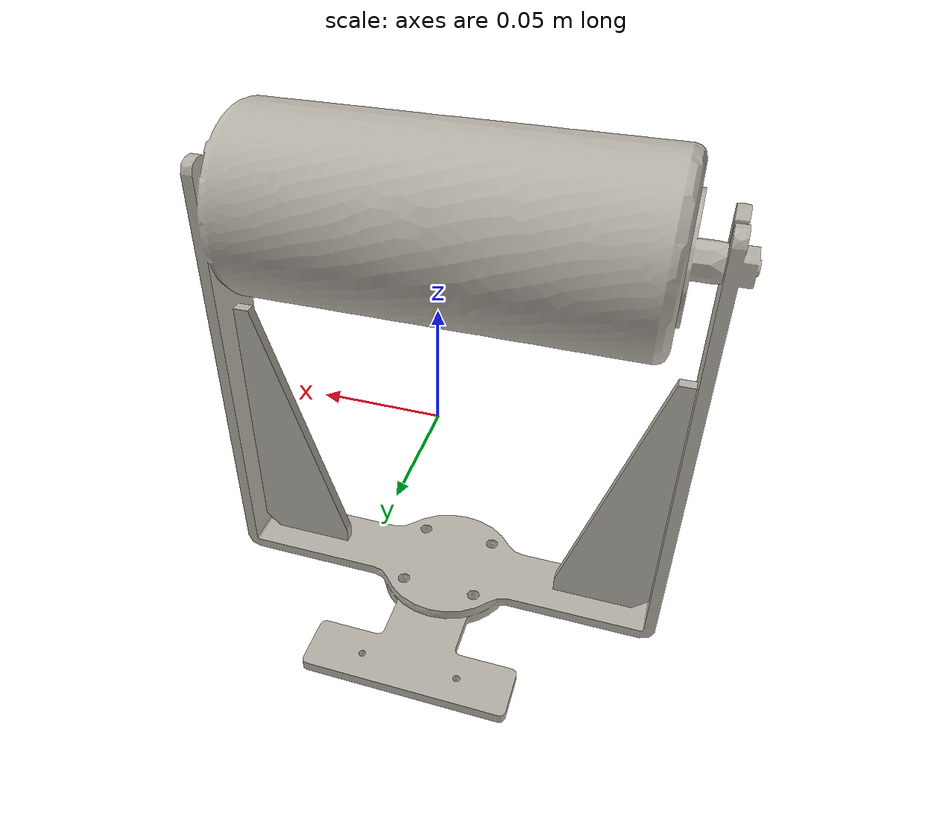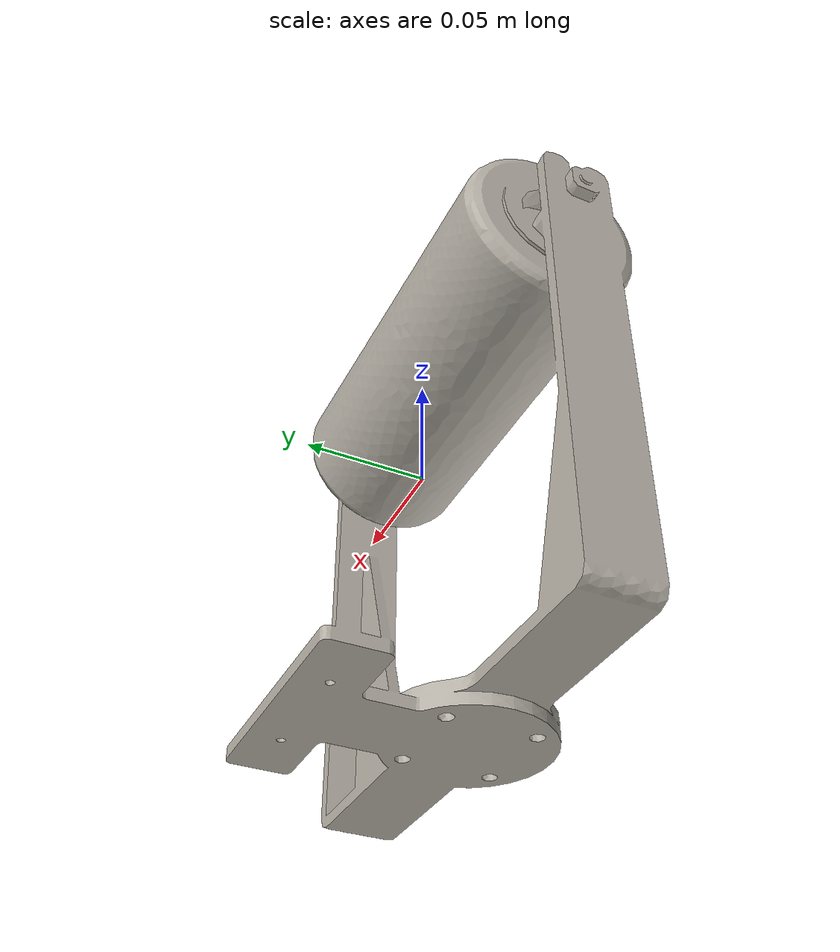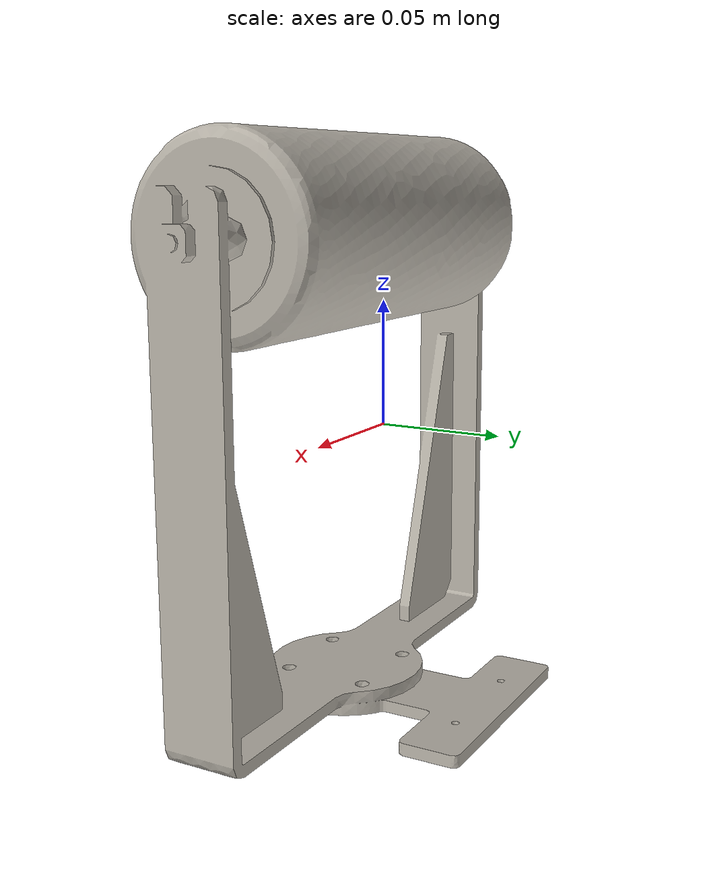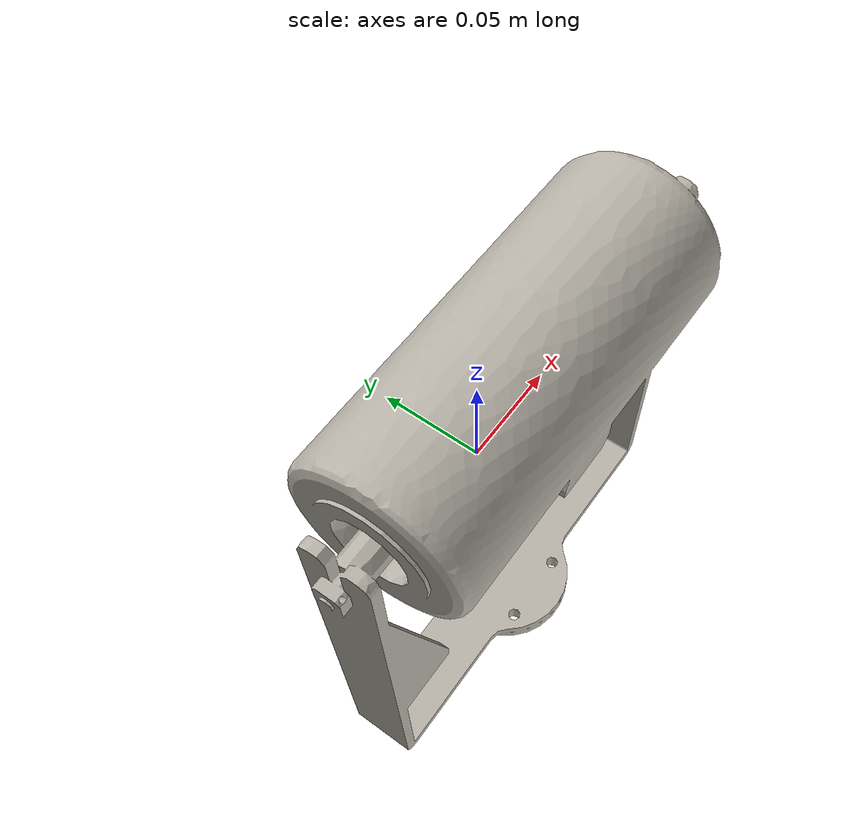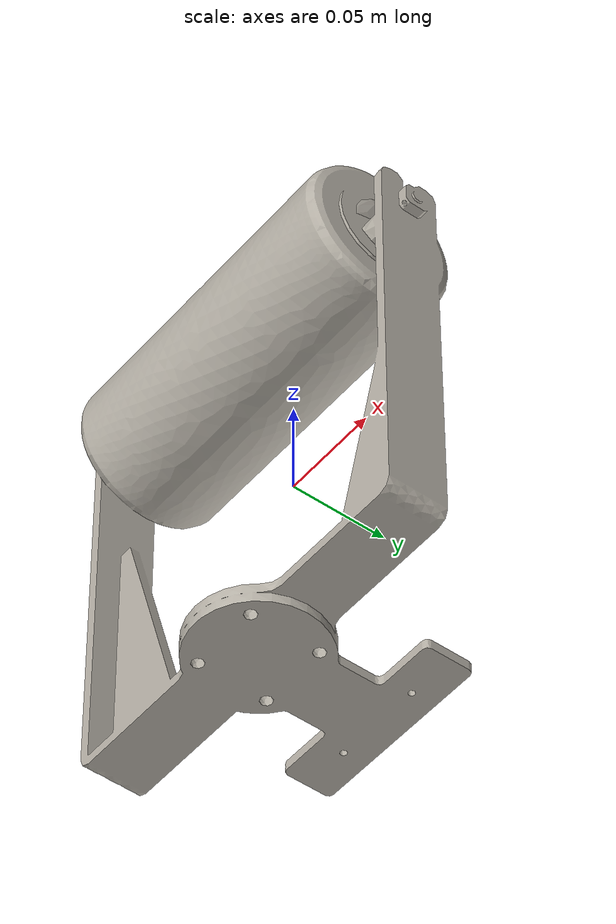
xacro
<?xml version="1.0"?>
<robot xmlns:xacro="http://www.ros.org/wiki/xacro" name="rr_00a_b_eoat_no_camera_standalone">
  <xacro:arg name="mass" default="1.0"/>
  <xacro:arg name="xyz" default="0 0 0"/>
  <xacro:arg name="rpy" default="0 0 0"/>

  <link name="base_link"/>

  <xacro:include filename="rr_00a_b_eoat_no_camera.urdf.xacro"/>
  <xacro:rr_00a_b_eoat_no_camera
    parent="base_link"
    prefix="eoat_no_camera_"
    xyz="$(arg xyz)"
    rpy="$(arg rpy)"
    mass="$(arg mass)"/>
</robot>

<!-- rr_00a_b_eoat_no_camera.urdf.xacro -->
<robot xmlns:xacro="http://www.ros.org/wiki/xacro">
  <xacro:property name="rr_00a_b_eoat_no_camera_visual_mesh" value="package://eoat_description/meshes/rr_00a_b_eoat_no_camera_visual.stl"/>
  <xacro:property name="rr_00a_b_eoat_no_camera_collision_mesh" value="package://eoat_description/meshes/rr_00a_b_eoat_no_camera_collision.stl"/>

  <xacro:property name="rr_00a_b_eoat_no_camera_size_x" value="0.220"/>
  <xacro:property name="rr_00a_b_eoat_no_camera_size_y" value="0.113"/>
  <xacro:property name="rr_00a_b_eoat_no_camera_size_z" value="0.2305"/>

  <xacro:macro name="rr_00a_b_eoat_no_camera" params="parent prefix xyz rpy mass">
    <link name="${prefix}link">
      <visual name="${prefix}visual">
        <origin xyz="0 0 0" rpy="0 0 0"/>
        <geometry>
          <mesh filename="${rr_00a_b_eoat_no_camera_visual_mesh}"/>
        </geometry>
        <material name="${prefix}warm_gray">
          <color rgba="0.72 0.70 0.66 1.0"/>
        </material>
      </visual>

      <collision name="${prefix}collision">
        <origin xyz="0 0 0" rpy="0 0 0"/>
        <geometry>
          <mesh filename="${rr_00a_b_eoat_no_camera_collision_mesh}"/>
        </geometry>
      </collision>

      <inertial>
        <origin xyz="0 0 0" rpy="0 0 0"/>
        <mass value="${mass}"/>
        <inertia
          ixx="${mass * (rr_00a_b_eoat_no_camera_size_y * rr_00a_b_eoat_no_camera_size_y + rr_00a_b_eoat_no_camera_size_z * rr_00a_b_eoat_no_camera_size_z) / 12.0}"
          ixy="0"
          ixz="0"
          iyy="${mass * (rr_00a_b_eoat_no_camera_size_x * rr_00a_b_eoat_no_camera_size_x + rr_00a_b_eoat_no_camera_size_z * rr_00a_b_eoat_no_camera_size_z) / 12.0}"
          iyz="0"
          izz="${mass * (rr_00a_b_eoat_no_camera_size_x * rr_00a_b_eoat_no_camera_size_x + rr_00a_b_eoat_no_camera_size_y * rr_00a_b_eoat_no_camera_size_y) / 12.0}"/>
      </inertial>
    </link>

    <joint name="${prefix}fixed_joint" type="fixed">
      <parent link="${parent}"/>
      <child link="${prefix}link"/>
      <origin xyz="${xyz}" rpy="${rpy}"/>
    </joint>
  </xacro:macro>
</robot>
